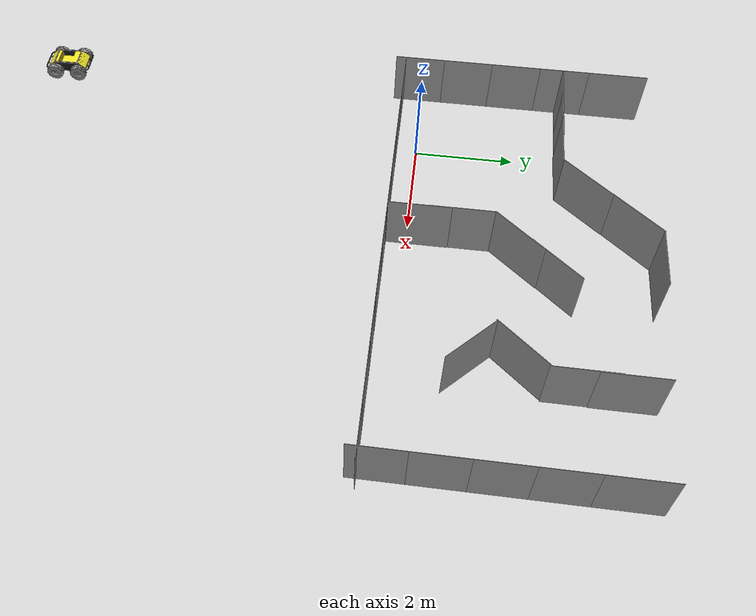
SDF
<sdf version="1.6">
 <world name="default">
  <model name="ground_plane">
   <static>1</static>
   <link name="link">
    <collision name="collision">
     <geometry><plane><normal>0 0 1</normal><size>100 100</size></plane></geometry>
     <surface>
      <contact><collide_bitmask>65535</collide_bitmask></contact>
      <friction><ode><mu>100</mu><mu2>50</mu2></ode></friction>
     </surface>
    </collision>
    <visual name="visual">
     <cast_shadows>0</cast_shadows>
     <geometry><plane><normal>0 0 1</normal><size>100 100</size></plane></geometry>
     <material>
      <script><uri>file://media/materials/scripts/gazebo.material</uri><name>Gazebo/Grey</name></script>
     </material>
    </visual>
   </link>
  </model>
  <model name="nist_maze_wall_120">
   <static>1</static>
   <link name="nist_maze_wall_120_link">
    <collision name="collision">
     <geometry>
      <mesh><uri>model://nist_maze_wall_120/meshes/nist_maze_wall_120.dae</uri><scale>1 1 1</scale></mesh>
     </geometry>
    </collision>
    <visual name="visual">
     <geometry>
      <mesh><uri>model://nist_maze_wall_120/meshes/nist_maze_wall_120.dae</uri><scale>1 1 1</scale></mesh>
     </geometry>
    </visual>
   </link>
   <pose>-1 -1 0 0 -0 0</pose>
  </model>
  <model name="nist_maze_wall_120_clone">
   <static>1</static>
   <link name="nist_maze_wall_120_link">
    <collision name="collision">
     <geometry>
      <mesh><uri>model://nist_maze_wall_120/meshes/nist_maze_wall_120.dae</uri><scale>1 1 1</scale></mesh>
     </geometry>
    </collision>
    <visual name="visual">
     <geometry>
      <mesh><uri>model://nist_maze_wall_120/meshes/nist_maze_wall_120.dae</uri><scale>1 1 1</scale></mesh>
     </geometry>
    </visual>
   </link>
   <pose>0 -1 0 0 -0 0</pose>
  </model>
  <model name="nist_maze_wall_120_clone_0">
   <static>1</static>
   <link name="nist_maze_wall_120_link">
    <collision name="collision">
     <geometry>
      <mesh><uri>model://nist_maze_wall_120/meshes/nist_maze_wall_120.dae</uri><scale>1 1 1</scale></mesh>
     </geometry>
    </collision>
    <visual name="visual">
     <geometry>
      <mesh><uri>model://nist_maze_wall_120/meshes/nist_maze_wall_120.dae</uri><scale>1 1 1</scale></mesh>
     </geometry>
    </visual>
   </link>
   <pose>1 -1 0 0 -0 0</pose>
  </model>
  <model name="nist_maze_wall_120_clone_0_clone_2">
   <static>1</static>
   <link name="nist_maze_wall_120_link">
    <collision name="collision">
     <geometry>
      <mesh><uri>model://nist_maze_wall_120/meshes/nist_maze_wall_120.dae</uri><scale>1 1 1</scale></mesh>
     </geometry>
    </collision>
    <visual name="visual">
     <geometry>
      <mesh><uri>model://nist_maze_wall_120/meshes/nist_maze_wall_120.dae</uri><scale>1 1 1</scale></mesh>
     </geometry>
    </visual>
   </link>
   <pose>4 -1 0 0 -0 0</pose>
  </model>
  <model name="nist_maze_wall_120_clone_0_clone_7">
   <static>1</static>
   <link name="nist_maze_wall_120_link">
    <collision name="collision">
     <geometry>
      <mesh><uri>model://nist_maze_wall_120/meshes/nist_maze_wall_120.dae</uri><scale>1 1 1</scale></mesh>
     </geometry>
    </collision>
    <visual name="visual">
     <geometry>
      <mesh><uri>model://nist_maze_wall_120/meshes/nist_maze_wall_120.dae</uri><scale>1 1 1</scale></mesh>
     </geometry>
    </visual>
   </link>
   <pose>5 -1 0 0 -0 0</pose>
  </model>
  <model name="nist_maze_wall_120_clone_0_clone_8">
   <static>1</static>
   <link name="nist_maze_wall_120_link">
    <collision name="collision">
     <geometry>
      <mesh><uri>model://nist_maze_wall_120/meshes/nist_maze_wall_120.dae</uri><scale>1 1 1</scale></mesh>
     </geometry>
    </collision>
    <visual name="visual">
     <geometry>
      <mesh><uri>model://nist_maze_wall_120/meshes/nist_maze_wall_120.dae</uri><scale>1 1 1</scale></mesh>
     </geometry>
    </visual>
   </link>
   <pose>6 -1 0 0 -0 0</pose>
  </model>
  <model name="nist_maze_wall_120_clone_0_clone_0_clone">
   <static>1</static>
   <link name="nist_maze_wall_120_link">
    <collision name="collision">
     <geometry>
      <mesh><uri>model://nist_maze_wall_120/meshes/nist_maze_wall_120.dae</uri><scale>1 1 1</scale></mesh>
     </geometry>
    </collision>
    <visual name="visual">
     <geometry>
      <mesh><uri>model://nist_maze_wall_120/meshes/nist_maze_wall_120.dae</uri><scale>1 1 1</scale></mesh>
     </geometry>
    </visual>
   </link>
   <pose>2 -1 0 0 -0 0</pose>
  </model>
  <model name="nist_maze_wall_120_clone_0_clone_8_clone">
   <static>1</static>
   <link name="nist_maze_wall_120_link">
    <collision name="collision">
     <geometry>
      <mesh><uri>model://nist_maze_wall_120/meshes/nist_maze_wall_120.dae</uri><scale>1 1 1</scale></mesh>
     </geometry>
    </collision>
    <visual name="visual">
     <geometry>
      <mesh><uri>model://nist_maze_wall_120/meshes/nist_maze_wall_120.dae</uri><scale>1 1 1</scale></mesh>
     </geometry>
    </visual>
   </link>
   <pose>3 1 0 0 -0 1.5708</pose>
  </model>
  <model name="nist_maze_wall_120_clone_0_clone_8_clone_clone">
   <static>1</static>
   <link name="nist_maze_wall_120_link">
    <collision name="collision">
     <geometry>
      <mesh><uri>model://nist_maze_wall_120/meshes/nist_maze_wall_120.dae</uri><scale>1 1 1</scale></mesh>
     </geometry>
    </collision>
    <visual name="visual">
     <geometry>
      <mesh><uri>model://nist_maze_wall_120/meshes/nist_maze_wall_120.dae</uri><scale>1 1 1</scale></mesh>
     </geometry>
    </visual>
   </link>
   <pose>3.00875 0.203464 0 0 -0 1.5708</pose>
  </model>
  <model name="nist_maze_wall_120_clone_0_clone_8_clone_clone_2">
   <static>1</static>
   <link name="nist_maze_wall_120_link">
    <collision name="collision">
     <geometry>
      <mesh><uri>model://nist_maze_wall_120/meshes/nist_maze_wall_120.dae</uri><scale>1 1 1</scale></mesh>
     </geometry>
    </collision>
    <visual name="visual">
     <geometry>
      <mesh><uri>model://nist_maze_wall_120/meshes/nist_maze_wall_120.dae</uri><scale>1 1 1</scale></mesh>
     </geometry>
    </visual>
   </link>
   <pose>8 2 0 0 -0 1.5708</pose>
  </model>
  <model name="nist_maze_wall_120_clone_0_clone_8_clone_clone_3">
   <static>1</static>
   <link name="nist_maze_wall_120_link">
    <collision name="collision">
     <geometry>
      <mesh><uri>model://nist_maze_wall_120/meshes/nist_maze_wall_120.dae</uri><scale>1 1 1</scale></mesh>
     </geometry>
    </collision>
    <visual name="visual">
     <geometry>
      <mesh><uri>model://nist_maze_wall_120/meshes/nist_maze_wall_120.dae</uri><scale>1 1 1</scale></mesh>
     </geometry>
    </visual>
   </link>
   <pose>8 0 0 0 -0 1.5708</pose>
  </model>
  <model name="nist_maze_wall_120_clone_0_clone_8_clone_clone_4">
   <static>1</static>
   <link name="nist_maze_wall_120_link">
    <collision name="collision">
     <geometry>
      <mesh><uri>model://nist_maze_wall_120/meshes/nist_maze_wall_120.dae</uri><scale>1 1 1</scale></mesh>
     </geometry>
    </collision>
    <visual name="visual">
     <geometry>
      <mesh><uri>model://nist_maze_wall_120/meshes/nist_maze_wall_120.dae</uri><scale>1 1 1</scale></mesh>
     </geometry>
    </visual>
   </link>
   <pose>8 1 0 0 -0 1.5708</pose>
  </model>
  <model name="nist_maze_wall_120_clone_0_clone_8_clone_clone_5">
   <static>1</static>
   <link name="nist_maze_wall_120_link">
    <collision name="collision">
     <geometry>
      <mesh><uri>model://nist_maze_wall_120/meshes/nist_maze_wall_120.dae</uri><scale>1 1 1</scale></mesh>
     </geometry>
    </collision>
    <visual name="visual">
     <geometry>
      <mesh><uri>model://nist_maze_wall_120/meshes/nist_maze_wall_120.dae</uri><scale>1 1 1</scale></mesh>
     </geometry>
    </visual>
   </link>
   <pose>8 4 0 0 -0 1.5708</pose>
  </model>
  <model name="nist_maze_wall_120_clone_0_clone_8_clone_clone_6">
   <static>1</static>
   <link name="nist_maze_wall_120_link">
    <collision name="collision">
     <geometry>
      <mesh><uri>model://nist_maze_wall_120/meshes/nist_maze_wall_120.dae</uri><scale>1 1 1</scale></mesh>
     </geometry>
    </collision>
    <visual name="visual">
     <geometry>
      <mesh><uri>model://nist_maze_wall_120/meshes/nist_maze_wall_120.dae</uri><scale>1 1 1</scale></mesh>
     </geometry>
    </visual>
   </link>
   <pose>-1 0 0 0 -0 1.5708</pose>
  </model>
  <model name="nist_maze_wall_120_clone_0_clone_8_clone_clone_7">
   <static>1</static>
   <link name="nist_maze_wall_120_link">
    <collision name="collision">
     <geometry>
      <mesh><uri>model://nist_maze_wall_120/meshes/nist_maze_wall_120.dae</uri><scale>1 1 1</scale></mesh>
     </geometry>
    </collision>
    <visual name="visual">
     <geometry>
      <mesh><uri>model://nist_maze_wall_120/meshes/nist_maze_wall_120.dae</uri><scale>1 1 1</scale></mesh>
     </geometry>
    </visual>
   </link>
   <pose>-1 1 0 0 -0 1.5708</pose>
  </model>
  <model name="nist_maze_wall_120_clone_0_clone_8_clone_clone_11">
   <static>1</static>
   <link name="nist_maze_wall_120_link">
    <collision name="collision">
     <geometry>
      <mesh><uri>model://nist_maze_wall_120/meshes/nist_maze_wall_120.dae</uri><scale>1 1 1</scale></mesh>
     </geometry>
    </collision>
    <visual name="visual">
     <geometry>
      <mesh><uri>model://nist_maze_wall_120/meshes/nist_maze_wall_120.dae</uri><scale>1 1 1</scale></mesh>
     </geometry>
    </visual>
   </link>
   <pose>-1 2 0 0 -0 1.5708</pose>
  </model>
  <model name="nist_maze_wall_120_clone_1">
   <static>1</static>
   <link name="nist_maze_wall_120_link">
    <collision name="collision">
     <geometry>
      <mesh><uri>model://nist_maze_wall_120/meshes/nist_maze_wall_120.dae</uri><scale>1 1 1</scale></mesh>
     </geometry>
    </collision>
    <visual name="visual">
     <geometry>
      <mesh><uri>model://nist_maze_wall_120/meshes/nist_maze_wall_120.dae</uri><scale>1 1 1</scale></mesh>
     </geometry>
    </visual>
   </link>
   <pose>-1 2.27384 0 0 -0 0</pose>
  </model>
  <model name="nist_maze_wall_120_clone_2">
   <static>1</static>
   <link name="nist_maze_wall_120_link">
    <collision name="collision">
     <geometry>
      <mesh><uri>model://nist_maze_wall_120/meshes/nist_maze_wall_120.dae</uri><scale>1 1 1</scale></mesh>
     </geometry>
    </collision>
    <visual name="visual">
     <geometry>
      <mesh><uri>model://nist_maze_wall_120/meshes/nist_maze_wall_120.dae</uri><scale>1 1 1</scale></mesh>
     </geometry>
    </visual>
   </link>
   <pose>0.34177 2.25834 0 0 -0 0</pose>
  </model>
  <model name="nist_maze_wall_120_clone_3">
   <static>1</static>
   <link name="nist_maze_wall_120_link">
    <collision name="collision">
     <geometry>
      <mesh><uri>model://nist_maze_wall_120/meshes/nist_maze_wall_120.dae</uri><scale>1 1 1</scale></mesh>
     </geometry>
    </collision>
    <visual name="visual">
     <geometry>
      <mesh><uri>model://nist_maze_wall_120/meshes/nist_maze_wall_120.dae</uri><scale>1 1 1</scale></mesh>
     </geometry>
    </visual>
   </link>
   <pose>3.05818 4.05787 0 0 -0 0</pose>
  </model>
  <model name="nist_maze_wall_120_clone_5">
   <static>1</static>
   <link name="nist_maze_wall_120_link">
    <collision name="collision">
     <geometry>
      <mesh><uri>model://nist_maze_wall_120/meshes/nist_maze_wall_120.dae</uri><scale>1 1 1</scale></mesh>
     </geometry>
    </collision>
    <visual name="visual">
     <geometry>
      <mesh><uri>model://nist_maze_wall_120/meshes/nist_maze_wall_120.dae</uri><scale>1 1 1</scale></mesh>
     </geometry>
    </visual>
   </link>
   <pose>5.62002 1.74898 0 0 -0 0.859737</pose>
  </model>
  <model name="nist_maze_wall_120_clone_6">
   <static>1</static>
   <link name="nist_maze_wall_120_link">
    <collision name="collision">
     <geometry>
      <mesh><uri>model://nist_maze_wall_120/meshes/nist_maze_wall_120.dae</uri><scale>1 1 1</scale></mesh>
     </geometry>
    </collision>
    <visual name="visual">
     <geometry>
      <mesh><uri>model://nist_maze_wall_120/meshes/nist_maze_wall_120.dae</uri><scale>1 1 1</scale></mesh>
     </geometry>
    </visual>
   </link>
   <pose>3 -1 0 0 -0 0</pose>
  </model>
  <model name="nist_maze_wall_120_clone_0_clone_8_clone_0">
   <static>1</static>
   <link name="nist_maze_wall_120_link">
    <collision name="collision">
     <geometry>
      <mesh><uri>model://nist_maze_wall_120/meshes/nist_maze_wall_120.dae</uri><scale>1 1 1</scale></mesh>
     </geometry>
    </collision>
    <visual name="visual">
     <geometry>
      <mesh><uri>model://nist_maze_wall_120/meshes/nist_maze_wall_120.dae</uri><scale>1 1 1</scale></mesh>
     </geometry>
    </visual>
   </link>
   <pose>7 -1 0 0 -0 0</pose>
  </model>
  <model name="nist_maze_wall_120_clone_0_clone_8_clone_clone_2_clone">
   <static>1</static>
   <link name="nist_maze_wall_120_link">
    <collision name="collision">
     <geometry>
      <mesh><uri>model://nist_maze_wall_120/meshes/nist_maze_wall_120.dae</uri><scale>1 1 1</scale></mesh>
     </geometry>
    </collision>
    <visual name="visual">
     <geometry>
      <mesh><uri>model://nist_maze_wall_120/meshes/nist_maze_wall_120.dae</uri><scale>1 1 1</scale></mesh>
     </geometry>
    </visual>
   </link>
   <pose>8 3 0 0 -0 1.5708</pose>
  </model>
  <model name="nist_maze_wall_120_clone_0_clone_9_clone_clone">
   <static>1</static>
   <link name="nist_maze_wall_120_link">
    <collision name="collision">
     <geometry>
      <mesh><uri>model://nist_maze_wall_120/meshes/nist_maze_wall_120.dae</uri><scale>1 1 1</scale></mesh>
     </geometry>
    </collision>
    <visual name="visual">
     <geometry>
      <mesh><uri>model://nist_maze_wall_120/meshes/nist_maze_wall_120.dae</uri><scale>1 1 1</scale></mesh>
     </geometry>
    </visual>
   </link>
   <pose>4.78653 0.858972 0 0 0 -0.785398</pose>
  </model>
  <model name="nist_maze_wall_120_clone_0_clone_8_clone_clone_5_clone_4">
   <static>1</static>
   <link name="nist_maze_wall_120_link">
    <collision name="collision">
     <geometry>
      <mesh><uri>model://nist_maze_wall_120/meshes/nist_maze_wall_120.dae</uri><scale>1 1 1</scale></mesh>
     </geometry>
    </collision>
    <visual name="visual">
     <geometry>
      <mesh><uri>model://nist_maze_wall_120/meshes/nist_maze_wall_120.dae</uri><scale>1 1 1</scale></mesh>
     </geometry>
    </visual>
   </link>
   <pose>6.17481 3.1793 0 0 -0 1.5708</pose>
  </model>
  <model name="nist_maze_wall_120_clone_0_clone_8_clone_clone_5_clone_6">
   <static>1</static>
   <link name="nist_maze_wall_120_link">
    <collision name="collision">
     <geometry>
      <mesh><uri>model://nist_maze_wall_120/meshes/nist_maze_wall_120.dae</uri><scale>1 1 1</scale></mesh>
     </geometry>
    </collision>
    <visual name="visual">
     <geometry>
      <mesh><uri>model://nist_maze_wall_120/meshes/nist_maze_wall_120.dae</uri><scale>1 1 1</scale></mesh>
     </geometry>
    </visual>
   </link>
   <pose>6.18586 4 0 0 -0 1.5708</pose>
  </model>
  <model name="nist_maze_wall_120_clone_0_clone_8_clone_clone_5_clone_6_clone_2">
   <static>1</static>
   <link name="nist_maze_wall_120_link">
    <collision name="collision">
     <geometry>
      <mesh><uri>model://nist_maze_wall_120/meshes/nist_maze_wall_120.dae</uri><scale>1 1 1</scale></mesh>
     </geometry>
    </collision>
    <visual name="visual">
     <geometry>
      <mesh><uri>model://nist_maze_wall_120/meshes/nist_maze_wall_120.dae</uri><scale>1 1 1</scale></mesh>
     </geometry>
    </visual>
   </link>
   <pose>-1 3 0 0 -0 1.5708</pose>
  </model>
  <model name="nist_maze_wall_120_clone_0_clone_8_clone_clone_5_clone_6_clone_3">
   <static>1</static>
   <link name="nist_maze_wall_120_link">
    <collision name="collision">
     <geometry>
      <mesh><uri>model://nist_maze_wall_120/meshes/nist_maze_wall_120.dae</uri><scale>1 1 1</scale></mesh>
     </geometry>
    </collision>
    <visual name="visual">
     <geometry>
      <mesh><uri>model://nist_maze_wall_120/meshes/nist_maze_wall_120.dae</uri><scale>1 1 1</scale></mesh>
     </geometry>
    </visual>
   </link>
   <pose>-1 4 0 0 -0 1.5708</pose>
  </model>
  <model name="husky_static">
   <link name="base_link">
    <inertial>
     <mass>33.855</mass>
     <pose>-0.085613 -0.00084 0.238145 0 -0 0</pose>
     <inertia>
      <ixx>2.2343</ixx>
      <ixy>-0.023642</ixy>
      <ixz>0.275174</ixz>
      <iyy>3.42518</iyy>
      <iyz>0.00239624</iyz>
      <izz>2.1241</izz>
     </inertia>
    </inertial>
    <visual name="base">
     <geometry><mesh><uri>model://husky/meshes/base_link.stl</uri></mesh></geometry>
     <material><script><name>Gazebo/FlatBlack</name><uri>__default__</uri></script></material>
    </visual>
    <visual name="top_plate">
     <geometry><mesh><uri>model://husky/meshes/top_plate.stl</uri></mesh></geometry>
     <material><script><name>Gazebo/Yellow</name><uri>__default__</uri></script></material>
    </visual>
    <visual name="front_bumper">
     <pose>0.47 0 0.091 0 -0 0</pose>
     <geometry><mesh><uri>model://husky/meshes/bumper.stl</uri></mesh></geometry>
     <material><script><name>Gazebo/FlatBlack</name><uri>__default__</uri></script></material>
    </visual>
    <visual name="rear_bumper">
     <pose>-0.47 0 0.091 0 -0 3.141</pose>
     <geometry><mesh><uri>model://husky/meshes/bumper.stl</uri></mesh></geometry>
     <material><script><name>Gazebo/FlatBlack</name><uri>__default__</uri></script></material>
    </visual>
    <visual name="user_rail">
     <pose>0.272 0 0.245 0 -0 0</pose>
     <geometry><mesh><uri>model://husky/meshes/user_rail.stl</uri></mesh></geometry>
     <material><script><name>Gazebo/Grey</name><uri>__default__</uri></script></material>
    </visual>
    <collision name="collision">
     <pose>0 0 0.1 0 -0 0</pose>
     <geometry><box><size>1.0074 0.5709 0.2675</size></box></geometry>
     <surface>
      <friction>
       <ode><mu>1</mu><mu2>1</mu2><fdir1>0 0 0</fdir1><slip1>0</slip1><slip2>0</slip2></ode>
       <torsional>
        <coefficient>1</coefficient>
        <patch_radius>0</patch_radius>
        <surface_radius>0</surface_radius>
        <use_patch_radius>1</use_patch_radius>
        <ode><slip>0</slip></ode>
       </torsional>
      </friction>
      <bounce><restitution_coefficient>0</restitution_coefficient><threshold>1e+06</threshold></bounce>
      <contact>
       <collide_without_contact>0</collide_without_contact>
       <collide_without_contact_bitmask>1</collide_without_contact_bitmask>
       <collide_bitmask>1</collide_bitmask>
       <ode>
        <soft_cfm>0</soft_cfm>
        <soft_erp>0.2</soft_erp>
        <kp>1e+13</kp>
        <kd>1</kd>
        <max_vel>0.01</max_vel>
        <min_depth>0</min_depth>
       </ode>
       <bullet>
        <split_impulse>1</split_impulse>
        <split_impulse_penetration_threshold>-0.01</split_impulse_penetration_threshold>
        <soft_cfm>0</soft_cfm>
        <soft_erp>0.2</soft_erp>
        <kp>1e+13</kp>
        <kd>1</kd>
       </bullet>
      </contact>
     </surface>
    </collision>
   </link>
   <link name="back_left_wheel">
    <pose>-0.256 0.285475 0.035 0 -0 0</pose>
    <inertial>
     <mass>2.6357</mass>
     <inertia>
      <ixx>0.0246688</ixx>
      <ixy>0</ixy>
      <ixz>0</ixz>
      <iyy>0.0246688</iyy>
      <iyz>0</iyz>
      <izz>0.0441058</izz>
     </inertia>
    </inertial>
    <visual name="back_left_wheel">
     <pose>0 0 0 -3.14159 0 0</pose>
     <geometry><mesh><uri>model://husky/meshes/wheel.stl</uri></mesh></geometry>
     <material><script><name>Gazebo/Grey</name><uri>__default__</uri></script></material>
    </visual>
    <collision name="back_left_wheel_collision">
     <pose>0 0 0 -1.5707 0 0</pose>
     <geometry><cylinder><radius>0.17775</radius><length>0.1143</length></cylinder></geometry>
     <surface>
      <friction>
       <ode><mu>100000</mu><mu2>100000</mu2><fdir1>0 0 0</fdir1><slip1>0</slip1><slip2>0</slip2></ode>
       <torsional>
        <coefficient>1</coefficient>
        <patch_radius>0</patch_radius>
        <surface_radius>0</surface_radius>
        <use_patch_radius>1</use_patch_radius>
        <ode><slip>0</slip></ode>
       </torsional>
      </friction>
      <bounce><restitution_coefficient>0</restitution_coefficient><threshold>1e+06</threshold></bounce>
      <contact>
       <collide_without_contact>0</collide_without_contact>
       <collide_without_contact_bitmask>1</collide_without_contact_bitmask>
       <collide_bitmask>1</collide_bitmask>
       <ode>
        <soft_cfm>0</soft_cfm>
        <soft_erp>0.2</soft_erp>
        <kp>1e+13</kp>
        <kd>1</kd>
        <max_vel>0.01</max_vel>
        <min_depth>0</min_depth>
       </ode>
       <bullet>
        <split_impulse>1</split_impulse>
        <split_impulse_penetration_threshold>-0.01</split_impulse_penetration_threshold>
        <soft_cfm>0</soft_cfm>
        <soft_erp>0.2</soft_erp>
        <kp>1e+13</kp>
        <kd>1</kd>
       </bullet>
      </contact>
     </surface>
    </collision>
   </link>
   <link name="back_right_wheel">
    <pose>-0.256 -0.285475 0.035 0 -0 0</pose>
    <inertial>
     <mass>2.6357</mass>
     <inertia>
      <ixx>0.0246688</ixx>
      <ixy>0</ixy>
      <ixz>0</ixz>
      <iyy>0.0246688</iyy>
      <iyz>0</iyz>
      <izz>0.0441058</izz>
     </inertia>
    </inertial>
    <visual name="back_right_wheel">
     <pose>0 0 0 -3.14159 0 0</pose>
     <geometry><mesh><uri>model://husky/meshes/wheel.stl</uri></mesh></geometry>
     <material><script><name>Gazebo/Grey</name><uri>__default__</uri></script></material>
    </visual>
    <collision name="back_right_wheel_collision">
     <pose>0 0 0 -1.5707 0 0</pose>
     <geometry><cylinder><radius>0.17775</radius><length>0.1143</length></cylinder></geometry>
     <surface>
      <friction>
       <ode><mu>100000</mu><mu2>100000</mu2><fdir1>0 0 0</fdir1><slip1>0</slip1><slip2>0</slip2></ode>
       <torsional>
        <coefficient>1</coefficient>
        <patch_radius>0</patch_radius>
        <surface_radius>0</surface_radius>
        <use_patch_radius>1</use_patch_radius>
        <ode><slip>0</slip></ode>
       </torsional>
      </friction>
      <bounce><restitution_coefficient>0</restitution_coefficient><threshold>1e+06</threshold></bounce>
      <contact>
       <collide_without_contact>0</collide_without_contact>
       <collide_without_contact_bitmask>1</collide_without_contact_bitmask>
       <collide_bitmask>1</collide_bitmask>
       <ode>
        <soft_cfm>0</soft_cfm>
        <soft_erp>0.2</soft_erp>
        <kp>1e+13</kp>
        <kd>1</kd>
        <max_vel>0.01</max_vel>
        <min_depth>0</min_depth>
       </ode>
       <bullet>
        <split_impulse>1</split_impulse>
        <split_impulse_penetration_threshold>-0.01</split_impulse_penetration_threshold>
        <soft_cfm>0</soft_cfm>
        <soft_erp>0.2</soft_erp>
        <kp>1e+13</kp>
        <kd>1</kd>
       </bullet>
      </contact>
     </surface>
    </collision>
   </link>
   <link name="front_left_wheel">
    <pose>0.256 0.285475 0.035 0 -0 0</pose>
    <inertial>
     <mass>2.6357</mass>
     <inertia>
      <ixx>0.0246688</ixx>
      <ixy>0</ixy>
      <ixz>0</ixz>
      <iyy>0.0246688</iyy>
      <iyz>0</iyz>
      <izz>0.0441058</izz>
     </inertia>
    </inertial>
    <visual name="front_left_wheel">
     <pose>0 0 0 -3.14159 0 0</pose>
     <geometry><mesh><uri>model://husky/meshes/wheel.stl</uri></mesh></geometry>
     <material><script><name>Gazebo/Grey</name><uri>__default__</uri></script></material>
    </visual>
    <collision name="front_left_wheel_collision">
     <pose>0 0 0 -1.5707 0 0</pose>
     <geometry><cylinder><radius>0.17775</radius><length>0.1143</length></cylinder></geometry>
     <surface>
      <friction>
       <ode><mu>100000</mu><mu2>100000</mu2><fdir1>0 0 0</fdir1><slip1>0</slip1><slip2>0</slip2></ode>
       <torsional>
        <coefficient>1</coefficient>
        <patch_radius>0</patch_radius>
        <surface_radius>0</surface_radius>
        <use_patch_radius>1</use_patch_radius>
        <ode><slip>0</slip></ode>
       </torsional>
      </friction>
      <bounce><restitution_coefficient>0</restitution_coefficient><threshold>1e+06</threshold></bounce>
      <contact>
       <collide_without_contact>0</collide_without_contact>
       <collide_without_contact_bitmask>1</collide_without_contact_bitmask>
       <collide_bitmask>1</collide_bitmask>
       <ode>
        <soft_cfm>0</soft_cfm>
        <soft_erp>0.2</soft_erp>
        <kp>1e+13</kp>
        <kd>1</kd>
        <max_vel>0.01</max_vel>
        <min_depth>0</min_depth>
       </ode>
       <bullet>
        <split_impulse>1</split_impulse>
        <split_impulse_penetration_threshold>-0.01</split_impulse_penetration_threshold>
        <soft_cfm>0</soft_cfm>
        <soft_erp>0.2</soft_erp>
        <kp>1e+13</kp>
        <kd>1</kd>
       </bullet>
      </contact>
     </surface>
    </collision>
   </link>
   <link name="front_right_wheel">
    <pose>0.256 -0.285475 0.035 0 -0 0</pose>
    <inertial>
     <mass>2.6357</mass>
     <inertia>
      <ixx>0.0246688</ixx>
      <ixy>0</ixy>
      <ixz>0</ixz>
      <iyy>0.0246688</iyy>
      <iyz>0</iyz>
      <izz>0.0441058</izz>
     </inertia>
    </inertial>
    <visual name="front_right_wheel">
     <pose>0 0 0 -3.14159 0 0</pose>
     <geometry><mesh><uri>model://husky/meshes/wheel.stl</uri></mesh></geometry>
     <material><script><name>Gazebo/Grey</name><uri>__default__</uri></script></material>
    </visual>
    <collision name="front_right_wheel_collision">
     <pose>0 0 0 -1.5707 0 0</pose>
     <geometry><cylinder><radius>0.17775</radius><length>0.1143</length></cylinder></geometry>
     <surface>
      <friction>
       <ode><mu>100000</mu><mu2>100000</mu2><fdir1>0 0 0</fdir1><slip1>0</slip1><slip2>0</slip2></ode>
       <torsional>
        <coefficient>1</coefficient>
        <patch_radius>0</patch_radius>
        <surface_radius>0</surface_radius>
        <use_patch_radius>1</use_patch_radius>
        <ode><slip>0</slip></ode>
       </torsional>
      </friction>
      <bounce><restitution_coefficient>0</restitution_coefficient><threshold>1e+06</threshold></bounce>
      <contact>
       <collide_without_contact>0</collide_without_contact>
       <collide_without_contact_bitmask>1</collide_without_contact_bitmask>
       <collide_bitmask>1</collide_bitmask>
       <ode>
        <soft_cfm>0</soft_cfm>
        <soft_erp>0.2</soft_erp>
        <kp>1e+13</kp>
        <kd>1</kd>
        <max_vel>0.01</max_vel>
        <min_depth>0</min_depth>
       </ode>
       <bullet>
        <split_impulse>1</split_impulse>
        <split_impulse_penetration_threshold>-0.01</split_impulse_penetration_threshold>
        <soft_cfm>0</soft_cfm>
        <soft_erp>0.2</soft_erp>
        <kp>1e+13</kp>
        <kd>1</kd>
       </bullet>
      </contact>
     </surface>
    </collision>
   </link>
   <joint name="back_left_joint" type="revolute">
    <parent>base_link</parent>
    <child>back_left_wheel</child>
    <axis>
     <xyz>0 1 0</xyz>
     <use_parent_model_frame>1</use_parent_model_frame>
     <limit><lower>-1e+16</lower><upper>1e+16</upper><effort>-1</effort><velocity>-1</velocity></limit>
     <dynamics>
      <spring_reference>0</spring_reference>
      <spring_stiffness>0</spring_stiffness>
      <damping>0</damping>
      <friction>0</friction>
     </dynamics>
    </axis>
    <physics>
     <ode><limit><cfm>0</cfm><erp>0.9</erp></limit><suspension><cfm>0</cfm><erp>0.2</erp></suspension></ode>
    </physics>
   </joint>
   <joint name="back_right_joint" type="revolute">
    <parent>base_link</parent>
    <child>back_right_wheel</child>
    <axis>
     <xyz>0 1 0</xyz>
     <use_parent_model_frame>1</use_parent_model_frame>
     <limit><lower>-1e+16</lower><upper>1e+16</upper><effort>-1</effort><velocity>-1</velocity></limit>
     <dynamics>
      <spring_reference>0</spring_reference>
      <spring_stiffness>0</spring_stiffness>
      <damping>0</damping>
      <friction>0</friction>
     </dynamics>
    </axis>
    <physics>
     <ode><limit><cfm>0</cfm><erp>0.9</erp></limit><suspension><cfm>0</cfm><erp>0.2</erp></suspension></ode>
    </physics>
   </joint>
   <joint name="front_left_joint" type="revolute">
    <parent>base_link</parent>
    <child>front_left_wheel</child>
    <axis>
     <xyz>0 1 0</xyz>
     <use_parent_model_frame>1</use_parent_model_frame>
     <limit><lower>-1e+16</lower><upper>1e+16</upper><effort>-1</effort><velocity>-1</velocity></limit>
     <dynamics>
      <spring_reference>0</spring_reference>
      <spring_stiffness>0</spring_stiffness>
      <damping>0</damping>
      <friction>0</friction>
     </dynamics>
    </axis>
    <physics>
     <ode><limit><cfm>0</cfm><erp>0.9</erp></limit><suspension><cfm>0</cfm><erp>0.2</erp></suspension></ode>
    </physics>
   </joint>
   <joint name="front_right_joint" type="revolute">
    <parent>base_link</parent>
    <child>front_right_wheel</child>
    <axis>
     <xyz>0 1 0</xyz>
     <use_parent_model_frame>1</use_parent_model_frame>
     <limit><lower>-1e+16</lower><upper>1e+16</upper><effort>-1</effort><velocity>-1</velocity></limit>
     <dynamics>
      <spring_reference>0</spring_reference>
      <spring_stiffness>0</spring_stiffness>
      <damping>0</damping>
      <friction>0</friction>
     </dynamics>
    </axis>
    <physics>
     <ode><limit><cfm>0</cfm><erp>0.9</erp></limit><suspension><cfm>0</cfm><erp>0.2</erp></suspension></ode>
    </physics>
   </joint>
   <static>1</static>
   <plugin name="husky_diff_controller" filename="libhusky_gazebo_plugins.so">
    <alwaysOn>1</alwaysOn>
    <updateRate>100.0</updateRate>
    <backLeftJoint>back_left_joint</backLeftJoint>
    <backRightJoint>back_right_joint</backRightJoint>
    <frontLeftJoint>front_left_joint</frontLeftJoint>
    <frontRightJoint>front_right_joint</frontRightJoint>
    <wheelSeparation>0.5709</wheelSeparation>
    <wheelDiameter>0.3555</wheelDiameter>
    <torque>35</torque>
   </plugin>
   <pose>-1.59264 -7.89162 0.142752 7e-06 -1e-06 -1.55891</pose>
  </model>
  <model name="nist_maze_wall_120_clone_5_clone_1">
   <static>1</static>
   <link name="nist_maze_wall_120_link">
    <collision name="collision">
     <geometry>
      <mesh><uri>model://nist_maze_wall_120/meshes/nist_maze_wall_120.dae</uri><scale>1 1 1</scale></mesh>
     </geometry>
    </collision>
    <visual name="visual">
     <geometry>
      <mesh><uri>model://nist_maze_wall_120/meshes/nist_maze_wall_120.dae</uri><scale>1 1 1</scale></mesh>
     </geometry>
    </visual>
   </link>
   <pose>3.23183 1.66156 0 0 -0 0.859737</pose>
  </model>
  <model name="nist_maze_wall_120_clone_5_clone_1_clone">
   <static>1</static>
   <link name="nist_maze_wall_120_link">
    <collision name="collision">
     <geometry>
      <mesh><uri>model://nist_maze_wall_120/meshes/nist_maze_wall_120.dae</uri><scale>1 1 1</scale></mesh>
     </geometry>
    </collision>
    <visual name="visual">
     <geometry>
      <mesh><uri>model://nist_maze_wall_120/meshes/nist_maze_wall_120.dae</uri><scale>1 1 1</scale></mesh>
     </geometry>
    </visual>
   </link>
   <pose>3.79679 2.33157 0 0 -0 0.859737</pose>
  </model>
  <model name="nist_maze_wall_120_clone_5_clone_1_clone_0">
   <static>1</static>
   <link name="nist_maze_wall_120_link">
    <collision name="collision">
     <geometry>
      <mesh><uri>model://nist_maze_wall_120/meshes/nist_maze_wall_120.dae</uri><scale>1 1 1</scale></mesh>
     </geometry>
    </collision>
    <visual name="visual">
     <geometry>
      <mesh><uri>model://nist_maze_wall_120/meshes/nist_maze_wall_120.dae</uri><scale>1 1 1</scale></mesh>
     </geometry>
    </visual>
   </link>
   <pose>1.76951 2.92663 0 0 -0 0.859737</pose>
  </model>
  <model name="nist_maze_wall_120_clone_5_clone_1_clone_3_clone">
   <static>1</static>
   <link name="nist_maze_wall_120_link">
    <collision name="collision">
     <geometry>
      <mesh><uri>model://nist_maze_wall_120/meshes/nist_maze_wall_120.dae</uri><scale>1 1 1</scale></mesh>
     </geometry>
    </collision>
    <visual name="visual">
     <geometry>
      <mesh><uri>model://nist_maze_wall_120/meshes/nist_maze_wall_120.dae</uri><scale>1 1 1</scale></mesh>
     </geometry>
    </visual>
   </link>
   <pose>2.53878 3.82855 0 0 -0 0.859737</pose>
  </model>
  <model name="nist_maze_wall_120_clone_2_clone">
   <static>1</static>
   <link name="nist_maze_wall_120_link">
    <collision name="collision">
     <geometry>
      <mesh><uri>model://nist_maze_wall_120/meshes/nist_maze_wall_120.dae</uri><scale>1 1 1</scale></mesh>
     </geometry>
    </collision>
    <visual name="visual">
     <geometry>
      <mesh><uri>model://nist_maze_wall_120/meshes/nist_maze_wall_120.dae</uri><scale>1 1 1</scale></mesh>
     </geometry>
    </visual>
   </link>
   <pose>-0.364884 2.27024 0 0 -0 0</pose>
  </model>
 </world>
</sdf>
